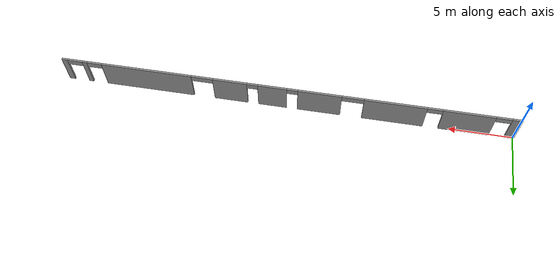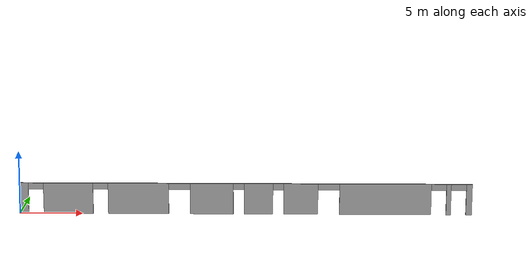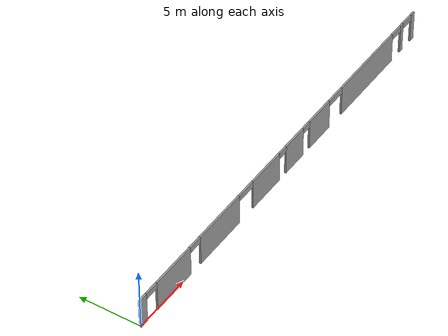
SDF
<?xml version='1.0'?>
<sdf version='1.6'>
  <model name='wall_n'>
    <pose frame=''>17.925 0 0 0 -0 0</pose>
    <link name='Wall_0'>
      <pose frame=''>0 0 0 0 -0 0</pose>
      <visual name='Wall_0_Visual_0'>
        <pose frame=''>-17.62 0 1.25 0 -0 0</pose>
        <geometry>
          <box>
            <size>0.760001 0.15 2.5</size>
          </box>
        </geometry>
        <material>
          <script>
            <uri>file://media/materials/scripts/gazebo.material</uri>
            <name>Gazebo/Grey</name>
          </script>
          <ambient>1 1 1 1</ambient>
        </material>
        <meta>
          <layer>0</layer>
        </meta>
      </visual>
      <collision name='Wall_0_Collision_0'>
        <geometry>
          <box>
            <size>0.760001 0.15 2.5</size>
          </box>
        </geometry>
        <pose frame=''>-17.62 0 1.25 0 -0 0</pose>
      </collision>
      <visual name='Wall_0_Visual_1'>
        <pose frame=''>-14.0675 0 1.25 0 -0 0</pose>
        <geometry>
          <box>
            <size>3.945 0.15 2.5</size>
          </box>
        </geometry>
        <material>
          <script>
            <uri>file://media/materials/scripts/gazebo.material</uri>
            <name>Gazebo/Grey</name>
          </script>
          <ambient>1 1 1 1</ambient>
        </material>
        <meta>
          <layer>0</layer>
        </meta>
      </visual>
      <collision name='Wall_0_Collision_1'>
        <geometry>
          <box>
            <size>3.945 0.15 2.5</size>
          </box>
        </geometry>
        <pose frame=''>-14.0675 0 1.25 0 -0 0</pose>
      </collision>
      <visual name='Wall_0_Visual_2'>
        <pose frame=''>-8.4815 0 1.25 0 -0 0</pose>
        <geometry>
          <box>
            <size>4.827 0.15 2.5</size>
          </box>
        </geometry>
        <material>
          <script>
            <uri>file://media/materials/scripts/gazebo.material</uri>
            <name>Gazebo/Grey</name>
          </script>
          <ambient>1 1 1 1</ambient>
        </material>
        <meta>
          <layer>0</layer>
        </meta>
      </visual>
      <collision name='Wall_0_Collision_2'>
        <geometry>
          <box>
            <size>4.827 0.15 2.5</size>
          </box>
        </geometry>
        <pose frame=''>-8.4815 0 1.25 0 -0 0</pose>
      </collision>
      <visual name='Wall_0_Visual_3'>
        <pose frame=''>-2.6395 0 1.25 0 -0 0</pose>
        <geometry>
          <box>
            <size>3.429 0.15 2.5</size>
          </box>
        </geometry>
        <material>
          <script>
            <uri>file://media/materials/scripts/gazebo.material</uri>
            <name>Gazebo/Grey</name>
          </script>
          <ambient>1 1 1 1</ambient>
        </material>
        <meta>
          <layer>0</layer>
        </meta>
      </visual>
      <collision name='Wall_0_Collision_3'>
        <geometry>
          <box>
            <size>3.429 0.15 2.5</size>
          </box>
        </geometry>
        <pose frame=''>-2.6395 0 1.25 0 -0 0</pose>
      </collision>
      <visual name='Wall_0_Visual_4'>
        <pose frame=''>1.075 0 1.25 0 -0 0</pose>
        <geometry>
          <box>
            <size>2.28 0.15 2.5</size>
          </box>
        </geometry>
        <material>
          <script>
            <uri>file://media/materials/scripts/gazebo.material</uri>
            <name>Gazebo/Grey</name>
          </script>
          <ambient>1 1 1 1</ambient>
        </material>
        <meta>
          <layer>0</layer>
        </meta>
      </visual>
      <collision name='Wall_0_Collision_4'>
        <geometry>
          <box>
            <size>2.28 0.15 2.5</size>
          </box>
        </geometry>
        <pose frame=''>1.075 0 1.25 0 -0 0</pose>
      </collision>
      <visual name='Wall_0_Visual_5'>
        <pose frame=''>4.4325 0 1.25 0 -0 0</pose>
        <geometry>
          <box>
            <size>2.715 0.15 2.5</size>
          </box>
        </geometry>
        <material>
          <script>
            <uri>file://media/materials/scripts/gazebo.material</uri>
            <name>Gazebo/Grey</name>
          </script>
          <ambient>1 1 1 1</ambient>
        </material>
        <meta>
          <layer>0</layer>
        </meta>
      </visual>
      <collision name='Wall_0_Collision_5'>
        <geometry>
          <box>
            <size>2.715 0.15 2.5</size>
          </box>
        </geometry>
        <pose frame=''>4.4325 0 1.25 0 -0 0</pose>
      </collision>
      <visual name='Wall_0_Visual_6'>
        <pose frame=''>11.1325 0 1.25 0 -0 0</pose>
        <geometry>
          <box>
            <size>7.265 0.15 2.5</size>
          </box>
        </geometry>
        <material>
          <script>
            <uri>file://media/materials/scripts/gazebo.material</uri>
            <name>Gazebo/Grey</name>
          </script>
          <ambient>1 1 1 1</ambient>
        </material>
        <meta>
          <layer>0</layer>
        </meta>
      </visual>
      <collision name='Wall_0_Collision_6'>
        <geometry>
          <box>
            <size>7.265 0.15 2.5</size>
          </box>
        </geometry>
        <pose frame=''>11.1325 0 1.25 0 -0 0</pose>
      </collision>
      <visual name='Wall_0_Visual_7'>
        <pose frame=''>16.15 0 1.25 0 -0 0</pose>
        <geometry>
          <box>
            <size>0.37 0.15 2.5</size>
          </box>
        </geometry>
        <material>
          <script>
            <uri>file://media/materials/scripts/gazebo.material</uri>
            <name>Gazebo/Grey</name>
          </script>
          <ambient>1 1 1 1</ambient>
        </material>
        <meta>
          <layer>0</layer>
        </meta>
      </visual>
      <collision name='Wall_0_Collision_7'>
        <geometry>
          <box>
            <size>0.37 0.15 2.5</size>
          </box>
        </geometry>
        <pose frame=''>16.15 0 1.25 0 -0 0</pose>
      </collision>
      <visual name='Wall_0_Visual_8'>
        <pose frame=''>17.7675 0 1.25 0 -0 0</pose>
        <geometry>
          <box>
            <size>0.464999 0.15 2.5</size>
          </box>
        </geometry>
        <material>
          <script>
            <uri>file://media/materials/scripts/gazebo.material</uri>
            <name>Gazebo/Grey</name>
          </script>
          <ambient>1 1 1 1</ambient>
        </material>
        <meta>
          <layer>0</layer>
        </meta>
      </visual>
      <collision name='Wall_0_Collision_8'>
        <geometry>
          <box>
            <size>0.464999 0.15 2.5</size>
          </box>
        </geometry>
        <pose frame=''>17.7675 0 1.25 0 -0 0</pose>
      </collision>
      <visual name='Wall_0_Visual_9'>
        <pose frame=''>-16.64 0 2.25 0 -0 0</pose>
        <geometry>
          <box>
            <size>1.2 0.15 0.5</size>
          </box>
        </geometry>
        <material>
          <script>
            <uri>file://media/materials/scripts/gazebo.material</uri>
            <name>Gazebo/Grey</name>
          </script>
          <ambient>1 1 1 1</ambient>
        </material>
        <meta>
          <layer>0</layer>
        </meta>
      </visual>
      <collision name='Wall_0_Collision_9'>
        <geometry>
          <box>
            <size>1.2 0.15 0.5</size>
          </box>
        </geometry>
        <pose frame=''>-16.64 0 2.25 0 -0 0</pose>
      </collision>
      <visual name='Wall_0_Visual_10'>
        <pose frame=''>-11.495 0 2.25 0 -0 0</pose>
        <geometry>
          <box>
            <size>1.2 0.15 0.5</size>
          </box>
        </geometry>
        <material>
          <script>
            <uri>file://media/materials/scripts/gazebo.material</uri>
            <name>Gazebo/Grey</name>
          </script>
          <ambient>1 1 1 1</ambient>
        </material>
        <meta>
          <layer>0</layer>
        </meta>
      </visual>
      <collision name='Wall_0_Collision_10'>
        <geometry>
          <box>
            <size>1.2 0.15 0.5</size>
          </box>
        </geometry>
        <pose frame=''>-11.495 0 2.25 0 -0 0</pose>
      </collision>
      <visual name='Wall_0_Visual_11'>
        <pose frame=''>-5.211 0 2.25 0 -0 0</pose>
        <geometry>
          <box>
            <size>1.714 0.15 0.5</size>
          </box>
        </geometry>
        <material>
          <script>
            <uri>file://media/materials/scripts/gazebo.material</uri>
            <name>Gazebo/Grey</name>
          </script>
          <ambient>1 1 1 1</ambient>
        </material>
        <meta>
          <layer>0</layer>
        </meta>
      </visual>
      <collision name='Wall_0_Collision_11'>
        <geometry>
          <box>
            <size>1.714 0.15 0.5</size>
          </box>
        </geometry>
        <pose frame=''>-5.211 0 2.25 0 -0 0</pose>
      </collision>
      <visual name='Wall_0_Visual_12'>
        <pose frame=''>-0.494999 0 2.25 0 -0 0</pose>
        <geometry>
          <box>
            <size>0.86 0.15 0.5</size>
          </box>
        </geometry>
        <material>
          <script>
            <uri>file://media/materials/scripts/gazebo.material</uri>
            <name>Gazebo/Grey</name>
          </script>
          <ambient>1 1 1 1</ambient>
        </material>
        <meta>
          <layer>0</layer>
        </meta>
      </visual>
      <collision name='Wall_0_Collision_12'>
        <geometry>
          <box>
            <size>0.86 0.15 0.5</size>
          </box>
        </geometry>
        <pose frame=''>-0.494999 0 2.25 0 -0 0</pose>
      </collision>
      <visual name='Wall_0_Visual_13'>
        <pose frame=''>2.645 0 2.25 0 -0 0</pose>
        <geometry>
          <box>
            <size>0.86 0.15 0.5</size>
          </box>
        </geometry>
        <material>
          <script>
            <uri>file://media/materials/scripts/gazebo.material</uri>
            <name>Gazebo/Grey</name>
          </script>
          <ambient>1 1 1 1</ambient>
        </material>
        <meta>
          <layer>0</layer>
        </meta>
      </visual>
      <collision name='Wall_0_Collision_13'>
        <geometry>
          <box>
            <size>0.86 0.15 0.5</size>
          </box>
        </geometry>
        <pose frame=''>2.645 0 2.25 0 -0 0</pose>
      </collision>
      <visual name='Wall_0_Visual_14'>
        <pose frame=''>6.645 0 2.25 0 -0 0</pose>
        <geometry>
          <box>
            <size>1.71 0.15 0.5</size>
          </box>
        </geometry>
        <material>
          <script>
            <uri>file://media/materials/scripts/gazebo.material</uri>
            <name>Gazebo/Grey</name>
          </script>
          <ambient>1 1 1 1</ambient>
        </material>
        <meta>
          <layer>0</layer>
        </meta>
      </visual>
      <collision name='Wall_0_Collision_14'>
        <geometry>
          <box>
            <size>1.71 0.15 0.5</size>
          </box>
        </geometry>
        <pose frame=''>6.645 0 2.25 0 -0 0</pose>
      </collision>
      <visual name='Wall_0_Visual_15'>
        <pose frame=''>15.365 0 2.25 0 -0 0</pose>
        <geometry>
          <box>
            <size>1.2 0.15 0.5</size>
          </box>
        </geometry>
        <material>
          <script>
            <uri>file://media/materials/scripts/gazebo.material</uri>
            <name>Gazebo/Grey</name>
          </script>
          <ambient>1 1 1 1</ambient>
        </material>
        <meta>
          <layer>0</layer>
        </meta>
      </visual>
      <collision name='Wall_0_Collision_15'>
        <geometry>
          <box>
            <size>1.2 0.15 0.5</size>
          </box>
        </geometry>
        <pose frame=''>15.365 0 2.25 0 -0 0</pose>
      </collision>
      <visual name='Wall_0_Visual_16'>
        <pose frame=''>16.935 0 2.25 0 -0 0</pose>
        <geometry>
          <box>
            <size>1.2 0.15 0.5</size>
          </box>
        </geometry>
        <material>
          <script>
            <uri>file://media/materials/scripts/gazebo.material</uri>
            <name>Gazebo/Grey</name>
          </script>
          <ambient>1 1 1 1</ambient>
        </material>
        <meta>
          <layer>0</layer>
        </meta>
      </visual>
      <collision name='Wall_0_Collision_16'>
        <geometry>
          <box>
            <size>1.2 0.15 0.5</size>
          </box>
        </geometry>
        <pose frame=''>16.935 0 2.25 0 -0 0</pose>
      </collision>
    </link>
    <static>1</static>
  </model>
</sdf>
